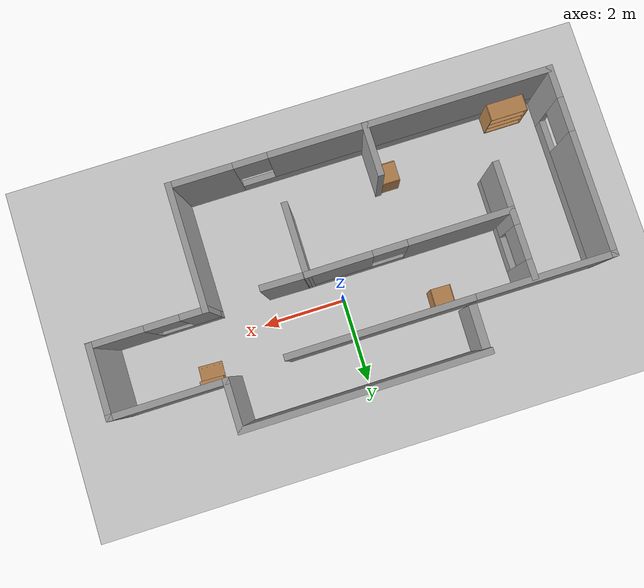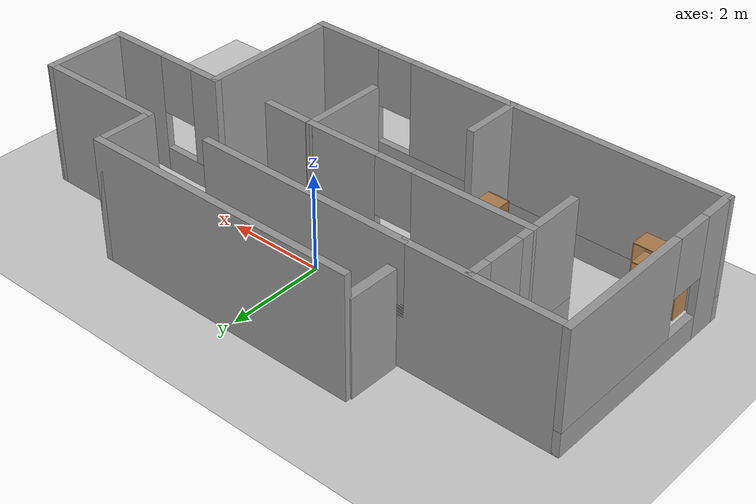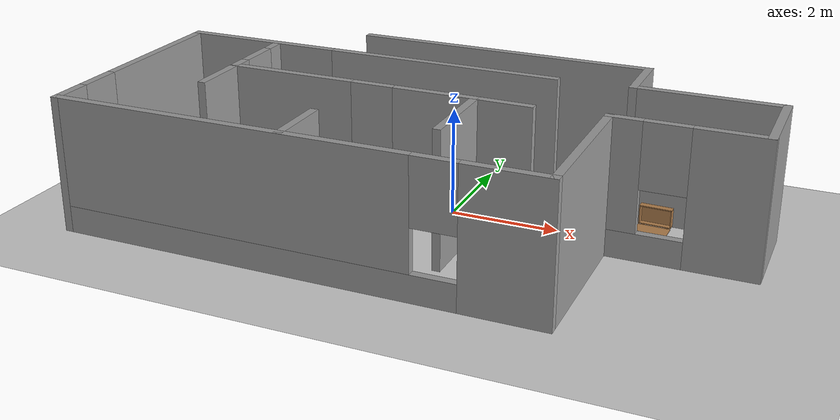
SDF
<sdf version="1.6">
 <world name="default">
  <light name="sun" type="directional">
   <pose>0 0 10 0 -0 0</pose>
   <diffuse>0.8 0.8 0.8 1</diffuse>
   <specular>0.1 0.1 0.1 1</specular>
   <attenuation>
    <range>1000</range>
    <constant>0.9</constant>
    <linear>0.01</linear>
    <quadratic>0.001</quadratic>
   </attenuation>
   <direction>-0.5 0.5 -1</direction>
  </light>
  <model name="ground_plane">
   <static>1</static>
   <link name="link">
    <collision name="collision">
     <geometry><plane><normal>0 0 1</normal><size>100 100</size></plane></geometry>
     <surface><friction><ode><mu>100</mu><mu2>50</mu2></ode></friction></surface>
    </collision>
    <visual name="visual">
     <cast_shadows>0</cast_shadows>
     <geometry><plane><normal>0 0 1</normal><size>100 100</size></plane></geometry>
     <material>
      <script><uri>file://media/materials/scripts/gazebo.material</uri><name>Gazebo/Grey</name></script>
     </material>
    </visual>
   </link>
  </model>
  <gravity>0 0 -9.8</gravity>
  <magnetic_field>6e-06 2.3e-05 -4.2e-05</magnetic_field>
  <atmosphere type="adiabatic"/>
  <physics name="default_physics" default="0" type="ode">
   <max_step_size>0.001</max_step_size>
   <real_time_factor>1</real_time_factor>
   <real_time_update_rate>1000</real_time_update_rate>
  </physics>
  <scene><ambient>0.4 0.4 0.4 1</ambient><background>0.7 0.7 0.7 1</background><shadows>1</shadows></scene>
  <spherical_coordinates>
   <surface_model>EARTH_WGS84</surface_model>
   <latitude_deg>0</latitude_deg>
   <longitude_deg>0</longitude_deg>
   <elevation>0</elevation>
   <heading_deg>0</heading_deg>
  </spherical_coordinates>
  <model name="home1">
   <pose>-0.18764 -0.6254 0 0 -0 0</pose>
   <link name="Door_0">
    <collision name="Door_0_Collision">
     <geometry><box><size>1.05 0.2 2</size></box></geometry>
     <pose>0 0 1 0 -0 0</pose>
    </collision>
    <visual name="Door_0_Visual">
     <pose>0 0 1 0 -0 0</pose>
     <geometry><box><size>1.05 0.2 2</size></box></geometry>
     <material>
      <script><uri>file://media/materials/scripts/gazebo.material</uri><name>Gazebo/Grey</name></script>
     </material>
    </visual>
    <pose>-2.485 2.215 0 0 -0 1.55726</pose>
   </link>
   <link name="Wall_0">
    <collision name="Wall_0_Collision">
     <geometry><box><size>5.75 0.15 2.5</size></box></geometry>
     <pose>0 0 1.25 0 -0 0</pose>
    </collision>
    <visual name="Wall_0_Visual">
     <pose>0 0 1.25 0 -0 0</pose>
     <geometry><box><size>5.75 0.15 2.5</size></box></geometry>
     <material>
      <script><uri>file://media/materials/scripts/gazebo.material</uri><name>Gazebo/Grey</name></script>
      <ambient>1 1 1 1</ambient>
     </material>
    </visual>
    <pose>0.325 2.775 0 0 -0 0</pose>
   </link>
   <link name="Wall_10">
    <collision name="Wall_10_Collision">
     <geometry><box><size>3.25 0.15 2.5</size></box></geometry>
     <pose>0 0 1.25 0 -0 0</pose>
    </collision>
    <visual name="Wall_10_Visual">
     <pose>0 0 1.25 0 -0 0</pose>
     <geometry><box><size>3.25 0.15 2.5</size></box></geometry>
     <material>
      <script><uri>file://media/materials/scripts/gazebo.material</uri><name>Gazebo/Grey</name></script>
      <ambient>1 1 1 1</ambient>
     </material>
    </visual>
    <pose>-4.175 1.575 0 0 -0 0</pose>
   </link>
   <link name="Wall_12">
    <pose>-3.90005 0.228067 0 0 0 -1.5708</pose>
    <visual name="Wall_12_Visual_0">
     <pose>-1.14207 0 1.25 0 -0 0</pose>
     <geometry><box><size>0.465855 0.15 2.5</size></box></geometry>
     <material>
      <script><uri>file://media/materials/scripts/gazebo.material</uri><name>Gazebo/Grey</name></script>
      <ambient>1 1 1 1</ambient>
     </material>
    </visual>
    <collision name="Wall_12_Collision_0">
     <geometry><box><size>0.465855 0.15 2.5</size></box></geometry>
     <pose>-1.14207 0 1.25 0 -0 0</pose>
    </collision>
    <visual name="Wall_12_Visual_1">
     <pose>0.232927 0 0.25 0 -0 0</pose>
     <geometry><box><size>2.28415 0.15 0.5</size></box></geometry>
     <material>
      <script><uri>file://media/materials/scripts/gazebo.material</uri><name>Gazebo/Grey</name></script>
      <ambient>1 1 1 1</ambient>
     </material>
    </visual>
    <collision name="Wall_12_Collision_1">
     <geometry><box><size>2.28415 0.15 0.5</size></box></geometry>
     <pose>0.232927 0 0.25 0 -0 0</pose>
    </collision>
    <visual name="Wall_12_Visual_2">
     <pose>0.632927 0 1.5 0 -0 0</pose>
     <geometry><box><size>1.48415 0.15 2</size></box></geometry>
     <material>
      <script><uri>file://media/materials/scripts/gazebo.material</uri><name>Gazebo/Grey</name></script>
      <ambient>1 1 1 1</ambient>
     </material>
    </visual>
    <collision name="Wall_12_Collision_2">
     <geometry><box><size>1.48415 0.15 2</size></box></geometry>
     <pose>0.632927 0 1.5 0 -0 0</pose>
    </collision>
    <visual name="Wall_12_Visual_3">
     <pose>-0.509145 0 1.9 0 -0 0</pose>
     <geometry><box><size>0.8 0.15 1.2</size></box></geometry>
     <material>
      <script><uri>file://media/materials/scripts/gazebo.material</uri><name>Gazebo/Grey</name></script>
      <ambient>1 1 1 1</ambient>
     </material>
    </visual>
    <collision name="Wall_12_Collision_3">
     <geometry><box><size>0.8 0.15 1.2</size></box></geometry>
     <pose>-0.509145 0 1.9 0 -0 0</pose>
    </collision>
   </link>
   <link name="Wall_14">
    <collision name="Wall_14_Collision">
     <geometry><box><size>4.5 0.15 2.5</size></box></geometry>
     <pose>0 0 1.25 0 -0 0</pose>
    </collision>
    <visual name="Wall_14_Visual">
     <pose>0 0 1.25 0 -0 0</pose>
     <geometry><box><size>4.5 0.15 2.5</size></box></geometry>
     <material>
      <script><uri>file://media/materials/scripts/gazebo.material</uri><name>Gazebo/Grey</name></script>
      <ambient>1 1 1 1</ambient>
     </material>
    </visual>
    <pose>-0.45 1.575 0 0 -0 0</pose>
   </link>
   <link name="Wall_16">
    <collision name="Wall_16_Collision">
     <geometry><box><size>1.25 0.15 2.5</size></box></geometry>
     <pose>0 0 1.25 0 -0 0</pose>
    </collision>
    <visual name="Wall_16_Visual">
     <pose>0 0 1.25 0 -0 0</pose>
     <geometry><box><size>1.25 0.15 2.5</size></box></geometry>
     <material>
      <script><uri>file://media/materials/scripts/gazebo.material</uri><name>Gazebo/Grey</name></script>
      <ambient>1 1 1 1</ambient>
     </material>
    </visual>
    <pose>-1.40581 -2.21577 0 0 0 -1.5708</pose>
   </link>
   <link name="Wall_18">
    <pose>-1.55204 -0.000412 0 0 -0 0.003239</pose>
    <visual name="Wall_18_Visual_0">
     <pose>-1.18633 0 1.25 0 -0 0</pose>
     <geometry><box><size>2.4734 0.15 2.5</size></box></geometry>
     <material>
      <script><uri>file://media/materials/scripts/gazebo.material</uri><name>Gazebo/Grey</name></script>
      <ambient>1 1 1 1</ambient>
     </material>
    </visual>
    <collision name="Wall_18_Collision_0">
     <geometry><box><size>2.4734 0.15 2.5</size></box></geometry>
     <pose>-1.18633 0 1.25 0 -0 0</pose>
    </collision>
    <visual name="Wall_18_Visual_1">
     <pose>1.2367 0 0.25 0 -0 0</pose>
     <geometry><box><size>2.37265 0.15 0.5</size></box></geometry>
     <material>
      <script><uri>file://media/materials/scripts/gazebo.material</uri><name>Gazebo/Grey</name></script>
      <ambient>1 1 1 1</ambient>
     </material>
    </visual>
    <collision name="Wall_18_Collision_1">
     <geometry><box><size>2.37265 0.15 0.5</size></box></geometry>
     <pose>1.2367 0 0.25 0 -0 0</pose>
    </collision>
    <visual name="Wall_18_Visual_2">
     <pose>1.6367 0 1.5 0 -0 0</pose>
     <geometry><box><size>1.57265 0.15 2</size></box></geometry>
     <material>
      <script><uri>file://media/materials/scripts/gazebo.material</uri><name>Gazebo/Grey</name></script>
      <ambient>1 1 1 1</ambient>
     </material>
    </visual>
    <collision name="Wall_18_Collision_2">
     <geometry><box><size>1.57265 0.15 2</size></box></geometry>
     <pose>1.6367 0 1.5 0 -0 0</pose>
    </collision>
    <visual name="Wall_18_Visual_3">
     <pose>0.450371 0 1.9 0 -0 0</pose>
     <geometry><box><size>0.8 0.15 1.2</size></box></geometry>
     <material>
      <script><uri>file://media/materials/scripts/gazebo.material</uri><name>Gazebo/Grey</name></script>
      <ambient>1 1 1 1</ambient>
     </material>
    </visual>
    <collision name="Wall_18_Collision_3">
     <geometry><box><size>0.8 0.15 1.2</size></box></geometry>
     <pose>0.450371 0 1.9 0 -0 0</pose>
    </collision>
   </link>
   <link name="Wall_2">
    <collision name="Wall_2_Collision">
     <geometry><box><size>1.25 0.15 2.5</size></box></geometry>
     <pose>0 0 1.25 0 -0 0</pose>
    </collision>
    <visual name="Wall_2_Visual">
     <pose>0 0 1.25 0 -0 0</pose>
     <geometry><box><size>1.25 0.15 2.5</size></box></geometry>
     <material>
      <script><uri>file://media/materials/scripts/gazebo.material</uri><name>Gazebo/Grey</name></script>
      <ambient>1 1 1 1</ambient>
     </material>
    </visual>
    <pose>3.125 2.225 0 0 0 -1.5708</pose>
   </link>
   <link name="Wall_20">
    <collision name="Wall_20_Collision">
     <geometry><box><size>1.75 0.15 2.5</size></box></geometry>
     <pose>0 0 1.25 0 -0 0</pose>
    </collision>
    <visual name="Wall_20_Visual">
     <pose>0 0 1.25 0 -0 0</pose>
     <geometry><box><size>1.75 0.15 2.5</size></box></geometry>
     <material>
      <script><uri>file://media/materials/scripts/gazebo.material</uri><name>Gazebo/Grey</name></script>
      <ambient>1 1 1 1</ambient>
     </material>
    </visual>
    <pose>0.811185 -0.792807 0 0 0 -1.5708</pose>
   </link>
   <link name="Wall_23">
    <collision name="Wall_23_Collision">
     <geometry><box><size>1.15409 0.15 2.5</size></box></geometry>
     <pose>0 0 1.25 0 -0 0</pose>
    </collision>
    <visual name="Wall_23_Visual">
     <pose>0 0 1.25 0 -0 0</pose>
     <geometry><box><size>1.15409 0.15 2.5</size></box></geometry>
     <material>
      <script><uri>file://media/materials/scripts/gazebo.material</uri><name>Gazebo/Grey</name></script>
      <ambient>1 1 1 1</ambient>
     </material>
    </visual>
    <pose>1.29797 -0.000412 0 0 0 -0.015147</pose>
   </link>
   <link name="Wall_3">
    <collision name="Wall_3_Collision">
     <geometry><box><size>2.75 0.15 2.5</size></box></geometry>
     <pose>0 0 1.25 0 -0 0</pose>
    </collision>
    <visual name="Wall_3_Visual">
     <pose>0 0 1.25 0 -0 0</pose>
     <geometry><box><size>2.75 0.15 2.5</size></box></geometry>
     <material>
      <script><uri>file://media/materials/scripts/gazebo.material</uri><name>Gazebo/Grey</name></script>
      <ambient>1 1 1 1</ambient>
     </material>
    </visual>
    <pose>4.425 1.675 0 0 -0 0</pose>
   </link>
   <link name="Wall_4">
    <collision name="Wall_4_Collision">
     <geometry><box><size>1.75 0.15 2.5</size></box></geometry>
     <pose>0 0 1.25 0 -0 0</pose>
    </collision>
    <visual name="Wall_4_Visual">
     <pose>0 0 1.25 0 -0 0</pose>
     <geometry><box><size>1.75 0.15 2.5</size></box></geometry>
     <material>
      <script><uri>file://media/materials/scripts/gazebo.material</uri><name>Gazebo/Grey</name></script>
      <ambient>1 1 1 1</ambient>
     </material>
    </visual>
    <pose>5.725 0.875 0 0 0 -1.5708</pose>
   </link>
   <link name="Wall_5">
    <pose>4.425 0.075 0 0 -0 3.14159</pose>
    <visual name="Wall_5_Visual_0">
     <pose>-0.724878 0 1.25 0 -0 0</pose>
     <geometry><box><size>1.30025 0.15 2.5</size></box></geometry>
     <material>
      <script><uri>file://media/materials/scripts/gazebo.material</uri><name>Gazebo/Grey</name></script>
      <ambient>1 1 1 1</ambient>
     </material>
    </visual>
    <collision name="Wall_5_Collision_0">
     <geometry><box><size>1.30025 0.15 2.5</size></box></geometry>
     <pose>-0.724878 0 1.25 0 -0 0</pose>
    </collision>
    <visual name="Wall_5_Visual_1">
     <pose>0.650122 0 0.25 0 -0 0</pose>
     <geometry><box><size>1.44975 0.15 0.5</size></box></geometry>
     <material>
      <script><uri>file://media/materials/scripts/gazebo.material</uri><name>Gazebo/Grey</name></script>
      <ambient>1 1 1 1</ambient>
     </material>
    </visual>
    <collision name="Wall_5_Collision_1">
     <geometry><box><size>1.44975 0.15 0.5</size></box></geometry>
     <pose>0.650122 0 0.25 0 -0 0</pose>
    </collision>
    <visual name="Wall_5_Visual_2">
     <pose>1.05012 0 1.5 0 -0 0</pose>
     <geometry><box><size>0.649755 0.15 2</size></box></geometry>
     <material>
      <script><uri>file://media/materials/scripts/gazebo.material</uri><name>Gazebo/Grey</name></script>
      <ambient>1 1 1 1</ambient>
     </material>
    </visual>
    <collision name="Wall_5_Collision_2">
     <geometry><box><size>0.649755 0.15 2</size></box></geometry>
     <pose>1.05012 0 1.5 0 -0 0</pose>
    </collision>
    <visual name="Wall_5_Visual_3">
     <pose>0.325245 0 1.9 0 -0 0</pose>
     <geometry><box><size>0.8 0.15 1.2</size></box></geometry>
     <material>
      <script><uri>file://media/materials/scripts/gazebo.material</uri><name>Gazebo/Grey</name></script>
      <ambient>1 1 1 1</ambient>
     </material>
    </visual>
    <collision name="Wall_5_Collision_3">
     <geometry><box><size>0.8 0.15 1.2</size></box></geometry>
     <pose>0.325245 0 1.9 0 -0 0</pose>
    </collision>
   </link>
   <link name="Wall_7">
    <collision name="Wall_7_Collision">
     <geometry><box><size>3 0.15 2.5</size></box></geometry>
     <pose>0 0 1.25 0 -0 0</pose>
    </collision>
    <visual name="Wall_7_Visual">
     <pose>0 0 1.25 0 -0 0</pose>
     <geometry><box><size>3 0.15 2.5</size></box></geometry>
     <material>
      <script><uri>file://media/materials/scripts/gazebo.material</uri><name>Gazebo/Grey</name></script>
      <ambient>1 1 1 1</ambient>
     </material>
    </visual>
    <pose>3.125 -1.35 0 0 0 -1.5708</pose>
   </link>
   <link name="Wall_8">
    <pose>-1.3 -2.775 0 0 -0 3.14159</pose>
    <visual name="Wall_8_Visual_0">
     <pose>-3.72786 0 1.25 0 -0 0</pose>
     <geometry><box><size>1.54428 0.15 2.5</size></box></geometry>
     <material>
      <script><uri>file://media/materials/scripts/gazebo.material</uri><name>Gazebo/Grey</name></script>
      <ambient>1 1 1 1</ambient>
     </material>
    </visual>
    <collision name="Wall_8_Collision_0">
     <geometry><box><size>1.54428 0.15 2.5</size></box></geometry>
     <pose>-3.72786 0 1.25 0 -0 0</pose>
    </collision>
    <visual name="Wall_8_Visual_1">
     <pose>0.77214 0 0.25 0 -0 0</pose>
     <geometry><box><size>7.45572 0.15 0.5</size></box></geometry>
     <material>
      <script><uri>file://media/materials/scripts/gazebo.material</uri><name>Gazebo/Grey</name></script>
      <ambient>1 1 1 1</ambient>
     </material>
    </visual>
    <collision name="Wall_8_Collision_1">
     <geometry><box><size>7.45572 0.15 0.5</size></box></geometry>
     <pose>0.77214 0 0.25 0 -0 0</pose>
    </collision>
    <visual name="Wall_8_Visual_2">
     <pose>1.17214 0 1.5 0 -0 0</pose>
     <geometry><box><size>6.65572 0.15 2</size></box></geometry>
     <material>
      <script><uri>file://media/materials/scripts/gazebo.material</uri><name>Gazebo/Grey</name></script>
      <ambient>1 1 1 1</ambient>
     </material>
    </visual>
    <collision name="Wall_8_Collision_2">
     <geometry><box><size>6.65572 0.15 2</size></box></geometry>
     <pose>1.17214 0 1.5 0 -0 0</pose>
    </collision>
    <visual name="Wall_8_Visual_3">
     <pose>-2.55572 0 1.9 0 -0 0</pose>
     <geometry><box><size>0.8 0.15 1.2</size></box></geometry>
     <material>
      <script><uri>file://media/materials/scripts/gazebo.material</uri><name>Gazebo/Grey</name></script>
      <ambient>1 1 1 1</ambient>
     </material>
    </visual>
    <collision name="Wall_8_Collision_3">
     <geometry><box><size>0.8 0.15 1.2</size></box></geometry>
     <pose>-2.55572 0 1.9 0 -0 0</pose>
    </collision>
   </link>
   <link name="Wall_9">
    <pose>-5.725 -0.6 0 0 -0 1.5708</pose>
    <visual name="Wall_9_Visual_0">
     <pose>-1.86549 0 1.25 0 -0 0</pose>
     <geometry><box><size>0.769022 0.15 2.5</size></box></geometry>
     <material>
      <script><uri>file://media/materials/scripts/gazebo.material</uri><name>Gazebo/Grey</name></script>
      <ambient>1 1 1 1</ambient>
     </material>
    </visual>
    <collision name="Wall_9_Collision_0">
     <geometry><box><size>0.769022 0.15 2.5</size></box></geometry>
     <pose>-1.86549 0 1.25 0 -0 0</pose>
    </collision>
    <visual name="Wall_9_Visual_1">
     <pose>0.384511 0 0.25 0 -0 0</pose>
     <geometry><box><size>3.73098 0.15 0.5</size></box></geometry>
     <material>
      <script><uri>file://media/materials/scripts/gazebo.material</uri><name>Gazebo/Grey</name></script>
      <ambient>1 1 1 1</ambient>
     </material>
    </visual>
    <collision name="Wall_9_Collision_1">
     <geometry><box><size>3.73098 0.15 0.5</size></box></geometry>
     <pose>0.384511 0 0.25 0 -0 0</pose>
    </collision>
    <visual name="Wall_9_Visual_2">
     <pose>0.784511 0 1.5 0 -0 0</pose>
     <geometry><box><size>2.93098 0.15 2</size></box></geometry>
     <material>
      <script><uri>file://media/materials/scripts/gazebo.material</uri><name>Gazebo/Grey</name></script>
      <ambient>1 1 1 1</ambient>
     </material>
    </visual>
    <collision name="Wall_9_Collision_2">
     <geometry><box><size>2.93098 0.15 2</size></box></geometry>
     <pose>0.784511 0 1.5 0 -0 0</pose>
    </collision>
    <visual name="Wall_9_Visual_3">
     <pose>-1.08098 0 1.9 0 -0 0</pose>
     <geometry><box><size>0.8 0.15 1.2</size></box></geometry>
     <material>
      <script><uri>file://media/materials/scripts/gazebo.material</uri><name>Gazebo/Grey</name></script>
      <ambient>1 1 1 1</ambient>
     </material>
    </visual>
    <collision name="Wall_9_Collision_3">
     <geometry><box><size>0.8 0.15 1.2</size></box></geometry>
     <pose>-1.08098 0 1.9 0 -0 0</pose>
    </collision>
   </link>
   <static>1</static>
  </model>
  <model name="cabinet">
   <static>1</static>
   <link name="cabinet_bottom_plate">
    <inertial>
     <pose>0 0 -1 0 -0 0</pose>
     <inertia><ixx>2.05</ixx><ixy>0</ixy><ixz>0</ixz><iyy>2.05</iyy><iyz>0</iyz><izz>2.05</izz></inertia>
     <mass>25</mass>
    </inertial>
    <collision name="cabinet_bottom_plate_geom">
     <pose>0 0 0.01 0 -0 0</pose>
     <geometry><box><size>0.45 0.45 0.02</size></box></geometry>
    </collision>
    <visual name="cabinet_bottom_plate_geom_visual">
     <pose>0 0 0.01 0 -0 0</pose>
     <geometry><box><size>0.45 0.45 0.02</size></box></geometry>
     <material>
      <script><uri>file://media/materials/scripts/gazebo.material</uri><name>Gazebo/Wood</name></script>
     </material>
    </visual>
    <collision name="cabinet_bottom_plate_geom_cabinet_back_plate">
     <pose>0.235 0 0.51 0 -0 0</pose>
     <geometry><box><size>0.02 0.45 1.02</size></box></geometry>
    </collision>
    <visual name="cabinet_bottom_plate_geom_cabinet_back_plate_visual">
     <pose>0.235 0 0.51 0 -0 0</pose>
     <geometry><box><size>0.02 0.45 1.02</size></box></geometry>
     <material>
      <script><uri>file://media/materials/scripts/gazebo.material</uri><name>Gazebo/Wood</name></script>
     </material>
    </visual>
    <collision name="cabinet_bottom_plate_geom_cabinet_left_plate">
     <pose>0 0.235 0.51 0 -0 0</pose>
     <geometry><box><size>0.45 0.02 1.02</size></box></geometry>
    </collision>
    <visual name="cabinet_bottom_plate_geom_cabinet_left_plate_visual">
     <pose>0 0.235 0.51 0 -0 0</pose>
     <geometry><box><size>0.45 0.02 1.02</size></box></geometry>
     <material>
      <script><uri>file://media/materials/scripts/gazebo.material</uri><name>Gazebo/Wood</name></script>
     </material>
    </visual>
    <collision name="cabinet_bottom_plate_geom_cabinet_middle_plate">
     <pose>0 0 0.51 0 -0 0</pose>
     <geometry><box><size>0.45 0.45 0.02</size></box></geometry>
    </collision>
    <visual name="cabinet_bottom_plate_geom_cabinet_middle_plate_visual">
     <pose>0 0 0.51 0 -0 0</pose>
     <geometry><box><size>0.45 0.45 0.02</size></box></geometry>
     <material>
      <script><uri>file://media/materials/scripts/gazebo.material</uri><name>Gazebo/Wood</name></script>
     </material>
    </visual>
    <collision name="cabinet_bottom_plate_geom_cabinet_right_plate">
     <pose>0 -0.235 0.51 0 -0 0</pose>
     <geometry><box><size>0.45 0.02 1.02</size></box></geometry>
    </collision>
    <visual name="cabinet_bottom_plate_geom_cabinet_right_plate_visual">
     <pose>0 -0.235 0.51 0 -0 0</pose>
     <geometry><box><size>0.45 0.02 1.02</size></box></geometry>
     <material>
      <script><uri>file://media/materials/scripts/gazebo.material</uri><name>Gazebo/Wood</name></script>
     </material>
    </visual>
    <collision name="cabinet_bottom_plate_geom_cabinet_top_plate">
     <pose>0 0 1.01 0 -0 0</pose>
     <geometry><box><size>0.45 0.45 0.02</size></box></geometry>
    </collision>
    <visual name="cabinet_bottom_plate_geom_cabinet_top_plate_visual">
     <pose>0 0 1.01 0 -0 0</pose>
     <geometry><box><size>0.45 0.45 0.02</size></box></geometry>
     <material>
      <script><uri>file://media/materials/scripts/gazebo.material</uri><name>Gazebo/Wood</name></script>
     </material>
    </visual>
   </link>
   <pose>-1.89294 -2.50556 0 0 -0 0</pose>
  </model>
  <model name="bookshelf">
   <static>1</static>
   <link name="link">
    <inertial><mass>1</mass></inertial>
    <collision name="back">
     <pose>0 0.005 0.6 0 -0 0</pose>
     <geometry><box><size>0.9 0.01 1.2</size></box></geometry>
    </collision>
    <visual name="visual1">
     <pose>0 0.005 0.6 0 -0 0</pose>
     <geometry><box><size>0.9 0.01 1.2</size></box></geometry>
     <material>
      <script><uri>file://media/materials/scripts/gazebo.material</uri><name>Gazebo/Wood</name></script>
     </material>
    </visual>
    <collision name="left_side">
     <pose>0.45 -0.195 0.6 0 -0 0</pose>
     <geometry><box><size>0.02 0.4 1.2</size></box></geometry>
    </collision>
    <visual name="visual2">
     <pose>0.45 -0.195 0.6 0 -0 0</pose>
     <geometry><box><size>0.02 0.4 1.2</size></box></geometry>
     <material>
      <script><uri>file://media/materials/scripts/gazebo.material</uri><name>Gazebo/Wood</name></script>
     </material>
    </visual>
    <collision name="right_side">
     <pose>-0.45 -0.195 0.6 0 -0 0</pose>
     <geometry><box><size>0.02 0.4 1.2</size></box></geometry>
    </collision>
    <visual name="visual3">
     <pose>-0.45 -0.195 0.6 0 -0 0</pose>
     <geometry><box><size>0.02 0.4 1.2</size></box></geometry>
     <material>
      <script><uri>file://media/materials/scripts/gazebo.material</uri><name>Gazebo/Wood</name></script>
     </material>
    </visual>
    <collision name="bottom">
     <pose>0 -0.195 0.03 0 -0 0</pose>
     <geometry><box><size>0.88 0.4 0.06</size></box></geometry>
    </collision>
    <visual name="visual4">
     <pose>0 -0.195 0.03 0 -0 0</pose>
     <geometry><box><size>0.88 0.4 0.06</size></box></geometry>
     <material>
      <script><uri>file://media/materials/scripts/gazebo.material</uri><name>Gazebo/Wood</name></script>
     </material>
    </visual>
    <collision name="top">
     <pose>0 -0.195 1.19 0 -0 0</pose>
     <geometry><box><size>0.88 0.4 0.02</size></box></geometry>
    </collision>
    <visual name="visual5">
     <pose>0 -0.195 1.19 0 -0 0</pose>
     <geometry><box><size>0.88 0.4 0.02</size></box></geometry>
     <material>
      <script><uri>file://media/materials/scripts/gazebo.material</uri><name>Gazebo/Wood</name></script>
     </material>
    </visual>
    <collision name="low_shelf">
     <pose>0 -0.195 0.43 0 -0 0</pose>
     <geometry><box><size>0.88 0.4 0.02</size></box></geometry>
    </collision>
    <visual name="visual6">
     <pose>0 -0.195 0.43 0 -0 0</pose>
     <geometry><box><size>0.88 0.4 0.02</size></box></geometry>
     <material>
      <script><uri>file://media/materials/scripts/gazebo.material</uri><name>Gazebo/Wood</name></script>
     </material>
    </visual>
    <collision name="high_shelf">
     <pose>0 -0.195 0.8 0 -0 0</pose>
     <geometry><box><size>0.88 0.4 0.02</size></box></geometry>
    </collision>
    <visual name="visual7">
     <pose>0 -0.195 0.8 0 -0 0</pose>
     <geometry><box><size>0.88 0.4 0.02</size></box></geometry>
     <material>
      <script><uri>file://media/materials/scripts/gazebo.material</uri><name>Gazebo/Wood</name></script>
     </material>
    </visual>
   </link>
   <pose>-5.0302 -3.32301 0 0 0 -3.14029</pose>
  </model>
  <model name="cabinet_0">
   <static>1</static>
   <link name="cabinet_bottom_plate">
    <inertial>
     <pose>0 0 -1 0 -0 0</pose>
     <inertia><ixx>2.05</ixx><ixy>0</ixy><ixz>0</ixz><iyy>2.05</iyy><iyz>0</iyz><izz>2.05</izz></inertia>
     <mass>25</mass>
    </inertial>
    <collision name="cabinet_bottom_plate_geom">
     <pose>0 0 0.01 0 -0 0</pose>
     <geometry><box><size>0.45 0.45 0.02</size></box></geometry>
    </collision>
    <visual name="cabinet_bottom_plate_geom_visual">
     <pose>0 0 0.01 0 -0 0</pose>
     <geometry><box><size>0.45 0.45 0.02</size></box></geometry>
     <material>
      <script><uri>file://media/materials/scripts/gazebo.material</uri><name>Gazebo/Wood</name></script>
     </material>
    </visual>
    <collision name="cabinet_bottom_plate_geom_cabinet_back_plate">
     <pose>0.235 0 0.51 0 -0 0</pose>
     <geometry><box><size>0.02 0.45 1.02</size></box></geometry>
    </collision>
    <visual name="cabinet_bottom_plate_geom_cabinet_back_plate_visual">
     <pose>0.235 0 0.51 0 -0 0</pose>
     <geometry><box><size>0.02 0.45 1.02</size></box></geometry>
     <material>
      <script><uri>file://media/materials/scripts/gazebo.material</uri><name>Gazebo/Wood</name></script>
     </material>
    </visual>
    <collision name="cabinet_bottom_plate_geom_cabinet_left_plate">
     <pose>0 0.235 0.51 0 -0 0</pose>
     <geometry><box><size>0.45 0.02 1.02</size></box></geometry>
    </collision>
    <visual name="cabinet_bottom_plate_geom_cabinet_left_plate_visual">
     <pose>0 0.235 0.51 0 -0 0</pose>
     <geometry><box><size>0.45 0.02 1.02</size></box></geometry>
     <material>
      <script><uri>file://media/materials/scripts/gazebo.material</uri><name>Gazebo/Wood</name></script>
     </material>
    </visual>
    <collision name="cabinet_bottom_plate_geom_cabinet_middle_plate">
     <pose>0 0 0.51 0 -0 0</pose>
     <geometry><box><size>0.45 0.45 0.02</size></box></geometry>
    </collision>
    <visual name="cabinet_bottom_plate_geom_cabinet_middle_plate_visual">
     <pose>0 0 0.51 0 -0 0</pose>
     <geometry><box><size>0.45 0.45 0.02</size></box></geometry>
     <material>
      <script><uri>file://media/materials/scripts/gazebo.material</uri><name>Gazebo/Wood</name></script>
     </material>
    </visual>
    <collision name="cabinet_bottom_plate_geom_cabinet_right_plate">
     <pose>0 -0.235 0.51 0 -0 0</pose>
     <geometry><box><size>0.45 0.02 1.02</size></box></geometry>
    </collision>
    <visual name="cabinet_bottom_plate_geom_cabinet_right_plate_visual">
     <pose>0 -0.235 0.51 0 -0 0</pose>
     <geometry><box><size>0.45 0.02 1.02</size></box></geometry>
     <material>
      <script><uri>file://media/materials/scripts/gazebo.material</uri><name>Gazebo/Wood</name></script>
     </material>
    </visual>
    <collision name="cabinet_bottom_plate_geom_cabinet_top_plate">
     <pose>0 0 1.01 0 -0 0</pose>
     <geometry><box><size>0.45 0.45 0.02</size></box></geometry>
    </collision>
    <visual name="cabinet_bottom_plate_geom_cabinet_top_plate_visual">
     <pose>0 0 1.01 0 -0 0</pose>
     <geometry><box><size>0.45 0.45 0.02</size></box></geometry>
     <material>
      <script><uri>file://media/materials/scripts/gazebo.material</uri><name>Gazebo/Wood</name></script>
     </material>
    </visual>
   </link>
   <pose>-2.21823 0.652431 0 0 -0 1.54871</pose>
  </model>
  <model name="wooden_case">
   <link name="base">
    <pose>0 0 0.024 0 -0 0</pose>
    <inertial>
     <pose>-0.022184 0 0.171592 0 -0 0</pose>
     <mass>3.96264</mass>
     <inertia>
      <ixx>0.213536</ixx>
      <ixy>0</ixy>
      <ixz>0.000779377</ixz>
      <iyy>0.0708943</iyy>
      <iyz>0</iyz>
      <izz>0.154604</izz>
     </inertia>
    </inertial>
    <collision name="collision_back">
     <pose>-0.053975 0 0.1778 0 -0 0</pose>
     <geometry><box><size>0.01905 0.5461 0.3175</size></box></geometry>
     <surface>
      <contact>
       <poissons_ratio>0.347</poissons_ratio>
       <elastic_modulus>8.8e+09</elastic_modulus>
       <ode><kp>100000</kp><kd>100</kd><max_vel>100</max_vel><min_depth>0.001</min_depth></ode>
      </contact>
      <friction>
       <torsional>
        <coefficient>1</coefficient>
        <use_patch_radius>0</use_patch_radius>
        <surface_radius>0.01</surface_radius>
       </torsional>
      </friction>
     </surface>
    </collision>
    <visual name="visual_back">
     <pose>-0.053975 0 0.1778 0 -0 0</pose>
     <geometry><box><size>0.01905 0.5461 0.3175</size></box></geometry>
     <material>
      <script><uri>file://media/materials/scripts/gazebo.material</uri><name>Gazebo/Wood</name></script>
     </material>
    </visual>
    <collision name="collision_bottom">
     <pose>0 0 0.009525 0 -0 0</pose>
     <geometry><box><size>0.127 0.5842 0.01905</size></box></geometry>
     <surface>
      <contact>
       <poissons_ratio>0.347</poissons_ratio>
       <elastic_modulus>8.8e+09</elastic_modulus>
       <ode><kp>100000</kp><kd>100</kd><max_vel>100</max_vel><min_depth>0.001</min_depth></ode>
      </contact>
      <friction>
       <torsional>
        <coefficient>1</coefficient>
        <use_patch_radius>0</use_patch_radius>
        <surface_radius>0.01</surface_radius>
       </torsional>
      </friction>
     </surface>
    </collision>
    <visual name="visual_bottom">
     <pose>0 0 0.009525 0 -0 0</pose>
     <geometry><box><size>0.127 0.5842 0.01905</size></box></geometry>
     <material>
      <script><uri>file://media/materials/scripts/gazebo.material</uri><name>Gazebo/Wood</name></script>
     </material>
    </visual>
    <collision name="collision_top">
     <pose>0 0 0.346075 0 -0 0</pose>
     <geometry><box><size>0.127 0.5842 0.01905</size></box></geometry>
     <surface>
      <contact>
       <poissons_ratio>0.347</poissons_ratio>
       <elastic_modulus>8.8e+09</elastic_modulus>
       <ode><kp>100000</kp><kd>100</kd><max_vel>100</max_vel><min_depth>0.001</min_depth></ode>
      </contact>
      <friction>
       <torsional>
        <coefficient>1</coefficient>
        <use_patch_radius>0</use_patch_radius>
        <surface_radius>0.01</surface_radius>
       </torsional>
      </friction>
     </surface>
    </collision>
    <visual name="visual_top">
     <pose>0 0 0.346075 0 -0 0</pose>
     <geometry><box><size>0.127 0.5842 0.01905</size></box></geometry>
     <material>
      <script><uri>file://media/materials/scripts/gazebo.material</uri><name>Gazebo/Wood</name></script>
     </material>
    </visual>
    <collision name="collision_left">
     <pose>0 -0.282575 0.1778 0 -0 0</pose>
     <geometry><box><size>0.127 0.01905 0.3175</size></box></geometry>
     <surface>
      <contact>
       <poissons_ratio>0.347</poissons_ratio>
       <elastic_modulus>8.8e+09</elastic_modulus>
       <ode><kp>100000</kp><kd>100</kd><max_vel>100</max_vel><min_depth>0.001</min_depth></ode>
      </contact>
      <friction>
       <torsional>
        <coefficient>1</coefficient>
        <use_patch_radius>0</use_patch_radius>
        <surface_radius>0.01</surface_radius>
       </torsional>
      </friction>
     </surface>
    </collision>
    <visual name="visual_left">
     <pose>0 -0.282575 0.1778 0 -0 0</pose>
     <geometry><box><size>0.127 0.01905 0.3175</size></box></geometry>
     <material>
      <script><uri>file://media/materials/scripts/gazebo.material</uri><name>Gazebo/Wood</name></script>
     </material>
    </visual>
    <collision name="collision_right">
     <pose>0 0.282575 0.1778 0 -0 0</pose>
     <geometry><box><size>0.127 0.01905 0.3175</size></box></geometry>
     <surface>
      <contact>
       <poissons_ratio>0.347</poissons_ratio>
       <elastic_modulus>8.8e+09</elastic_modulus>
       <ode><kp>100000</kp><kd>100</kd><max_vel>100</max_vel><min_depth>0.001</min_depth></ode>
      </contact>
      <friction>
       <torsional>
        <coefficient>1</coefficient>
        <use_patch_radius>0</use_patch_radius>
        <surface_radius>0.01</surface_radius>
       </torsional>
      </friction>
     </surface>
    </collision>
    <visual name="visual_right">
     <pose>0 0.282575 0.1778 0 -0 0</pose>
     <geometry><box><size>0.127 0.01905 0.3175</size></box></geometry>
     <material>
      <script><uri>file://media/materials/scripts/gazebo.material</uri><name>Gazebo/Wood</name></script>
     </material>
    </visual>
    <collision name="collision_block_left">
     <pose>0.0095 -0.2151 -0.012 0 -0 0</pose>
     <geometry><box><size>0.108 0.05 0.024</size></box></geometry>
     <surface>
      <contact>
       <poissons_ratio>0.347</poissons_ratio>
       <elastic_modulus>8.8e+09</elastic_modulus>
       <ode><kp>100000</kp><kd>100</kd><max_vel>100</max_vel><min_depth>0.001</min_depth></ode>
      </contact>
      <friction>
       <torsional>
        <coefficient>1</coefficient>
        <use_patch_radius>0</use_patch_radius>
        <surface_radius>0.01</surface_radius>
       </torsional>
      </friction>
     </surface>
    </collision>
    <visual name="visual_block_left">
     <pose>0.0095 -0.2151 -0.012 0 -0 0</pose>
     <geometry><box><size>0.108 0.05 0.024</size></box></geometry>
     <material>
      <script><uri>file://media/materials/scripts/gazebo.material</uri><name>Gazebo/Wood</name></script>
     </material>
    </visual>
    <collision name="collision_block_right">
     <pose>0.0095 0.2151 -0.012 0 -0 0</pose>
     <geometry><box><size>0.108 0.05 0.024</size></box></geometry>
     <surface>
      <contact>
       <poissons_ratio>0.347</poissons_ratio>
       <elastic_modulus>8.8e+09</elastic_modulus>
       <ode><kp>100000</kp><kd>100</kd><max_vel>100</max_vel><min_depth>0.001</min_depth></ode>
      </contact>
      <friction>
       <torsional>
        <coefficient>1</coefficient>
        <use_patch_radius>0</use_patch_radius>
        <surface_radius>0.01</surface_radius>
       </torsional>
      </friction>
     </surface>
    </collision>
    <visual name="visual_block_right">
     <pose>0.0095 0.2151 -0.012 0 -0 0</pose>
     <geometry><box><size>0.108 0.05 0.024</size></box></geometry>
     <material>
      <script><uri>file://media/materials/scripts/gazebo.material</uri><name>Gazebo/Wood</name></script>
     </material>
    </visual>
   </link>
   <link name="lid">
    <pose>0.243775 0 0.009525 0 -0 0</pose>
    <inertial>
     <mass>1.97874</mass>
     <inertia>
      <ixx>0.0563367</ixx>
      <ixy>0</ixy>
      <ixz>0</ixz>
      <iyy>0.020911</iyy>
      <iyz>0</iyz>
      <izz>0.0771281</izz>
     </inertia>
    </inertial>
    <collision name="collision">
     <geometry><box><size>0.3556 0.5842 0.01905</size></box></geometry>
     <surface>
      <contact>
       <poissons_ratio>0.347</poissons_ratio>
       <elastic_modulus>8.8e+09</elastic_modulus>
       <ode><kp>100000</kp><kd>100</kd><max_vel>100</max_vel><min_depth>0.001</min_depth></ode>
      </contact>
      <friction>
       <torsional>
        <coefficient>1</coefficient>
        <use_patch_radius>0</use_patch_radius>
        <surface_radius>0.01</surface_radius>
       </torsional>
      </friction>
     </surface>
    </collision>
    <visual name="visual">
     <geometry><box><size>0.3556 0.5842 0.01905</size></box></geometry>
     <material>
      <script><uri>file://media/materials/scripts/gazebo.material</uri><name>Gazebo/Wood</name></script>
     </material>
    </visual>
    <visual name="tee_nut_1">
     <pose>0.122 -0.216 0 0 -0 0</pose>
     <geometry><cylinder><radius>0.00635</radius><length>0.0192405</length></cylinder></geometry>
     <material>
      <script><uri>file://media/materials/scripts/gazebo.material</uri><name>Gazebo/Grey</name></script>
     </material>
    </visual>
    <visual name="tee_nut_2">
     <pose>0.122 -0.088 0 0 -0 0</pose>
     <geometry><cylinder><radius>0.00635</radius><length>0.0192405</length></cylinder></geometry>
     <material>
      <script><uri>file://media/materials/scripts/gazebo.material</uri><name>Gazebo/Grey</name></script>
     </material>
    </visual>
    <visual name="tee_nut_3">
     <pose>0.122 0.088 0 0 -0 0</pose>
     <geometry><cylinder><radius>0.00635</radius><length>0.0192405</length></cylinder></geometry>
     <material>
      <script><uri>file://media/materials/scripts/gazebo.material</uri><name>Gazebo/Grey</name></script>
     </material>
    </visual>
    <visual name="tee_nut_4">
     <pose>0.122 0.216 0 0 -0 0</pose>
     <geometry><cylinder><radius>0.00635</radius><length>0.0192405</length></cylinder></geometry>
     <material>
      <script><uri>file://media/materials/scripts/gazebo.material</uri><name>Gazebo/Grey</name></script>
     </material>
    </visual>
   </link>
   <joint name="lid_hinge" type="revolute">
    <pose>-0.1778 0 0.01905 0 -0 0</pose>
    <parent>base</parent>
    <child>lid</child>
    <axis>
     <xyz>0 1 0</xyz>
     <limit><upper>0.523599</upper><lower>-1.5708</lower></limit>
     <use_parent_model_frame>0</use_parent_model_frame>
     <dynamics><spring_reference>0</spring_reference><spring_stiffness>0</spring_stiffness></dynamics>
    </axis>
   </joint>
   <pose>3.53235 0.901643 -0.001074 0.000195 0.000547 -1.60755</pose>
  </model>
 </world>
</sdf>
